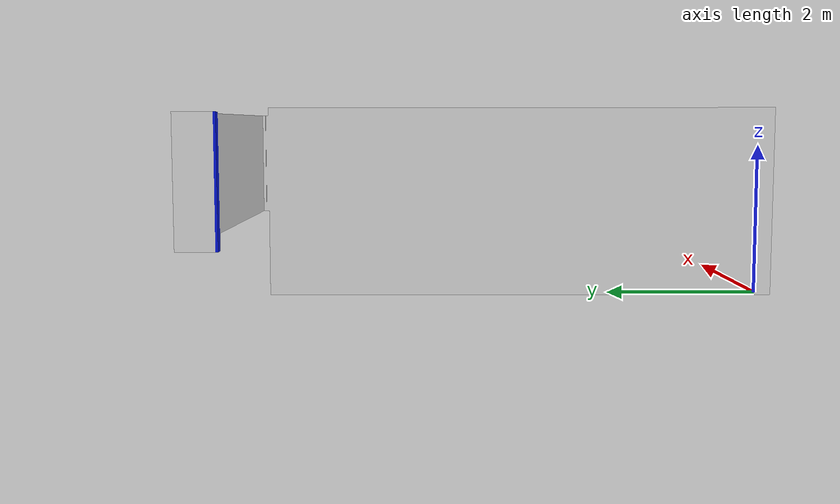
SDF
<?xml version="1.0" ?>
<sdf version="1.5">
  <model name="p109">
    <static>true</static>
    <link name="p109">
      <collision name="p109">
        <pose>0 0 0 0 0 0</pose>
        <geometry>
          <mesh>
            <uri>model://p109/meshes/model.dae</uri>
          </mesh>
        </geometry>
      </collision>

      <visual name="p109">
      <cast_shadows>true</cast_shadows>
        <geometry>
          <mesh>
          <uri>model://p109/meshes/model.dae</uri>
        </mesh>
        </geometry>
      </visual>
    </link>
  </model>
</sdf>
